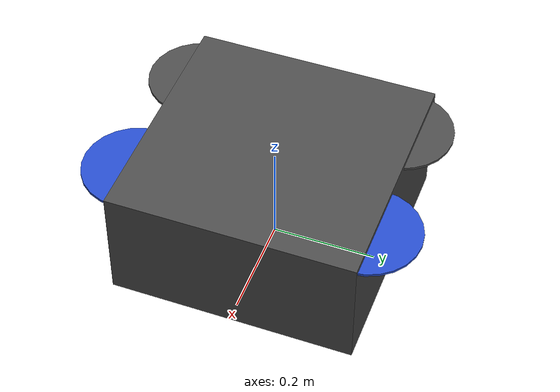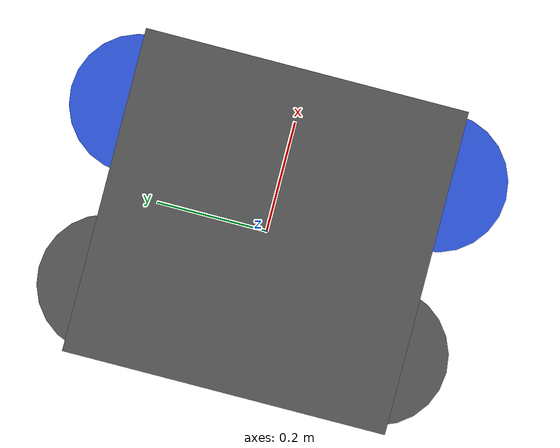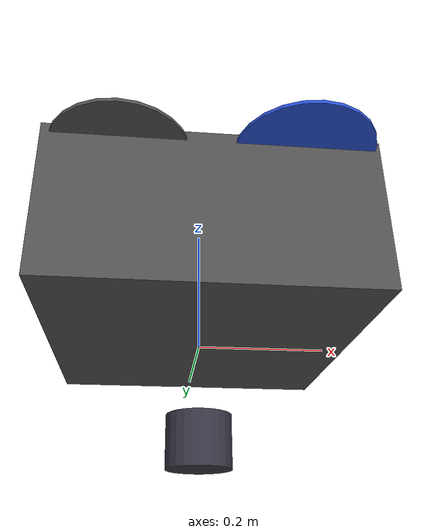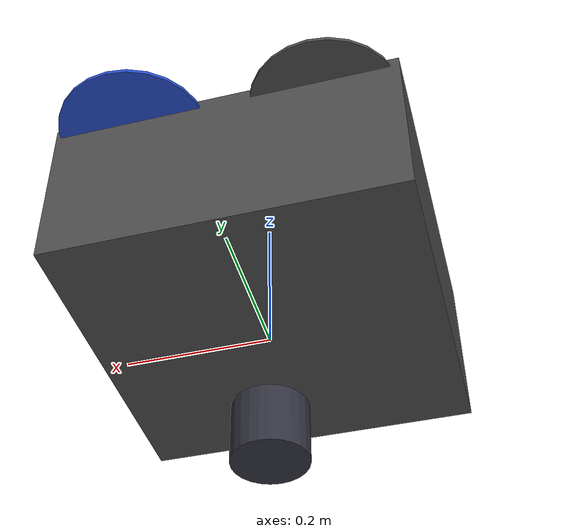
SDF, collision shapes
<?xml version="1.0"?>
<sdf version="1.10">
  <model name="iris_with_3d_lidar">
    <!-- Include base iris model with standoffs -->
    <include>
      <uri>model://iris_with_standoffs</uri>
    </include>

    <!-- LiDAR link - mounted on bottom of drone, facing downward -->
    <link name="lidar_link">
      <pose>0 0 -0.15 0 0 0</pose>
      <inertial>
        <pose>0 0 0 0 0 0</pose>
        <mass>0.1</mass>
        <inertia>
          <ixx>0.0001</ixx>
          <ixy>0</ixy>
          <ixz>0</ixz>
          <iyy>0.0001</iyy>
          <iyz>0</iyz>
          <izz>0.0001</izz>
        </inertia>
      </inertial>
      <collision name="lidar_collision">
        <pose>0 0 0 0 0 0</pose>
        <geometry>
          <cylinder>
            <radius>0.05</radius>
            <length>0.08</length>
          </cylinder>
        </geometry>
      </collision>
      <visual name="lidar_visual">
        <pose>0 0 0 0 0 0</pose>
        <geometry>
          <cylinder>
            <radius>0.05</radius>
            <length>0.08</length>
          </cylinder>
        </geometry>
        <material>
          <ambient>0.2 0.2 0.25 1</ambient>
          <diffuse>0.2 0.2 0.25 1</diffuse>
          <specular>0.5 0.5 0.5 1</specular>
        </material>
      </visual>
      <!-- 3D LiDAR sensor (Hesai PandarXT-32 style) pointing downward -->
      <sensor name="lidar_sensor" type="gpu_lidar">
        <pose>0 0 0 1.5707963 0 0</pose>
        <always_on>1</always_on>
        <update_rate>10</update_rate>
        <visualize>true</visualize>
        <topic>lidar/points</topic>
        <ray>
          <scan>
            <horizontal>
              <samples>2000</samples>
              <resolution>1</resolution>
              <min_angle>-3.14159</min_angle>
              <max_angle>3.14159</max_angle>
            </horizontal>
            <vertical>
              <samples>32</samples>
              <resolution>1</resolution>
              <min_angle>-0.279253</min_angle>
              <max_angle>0.261799</max_angle>
            </vertical>
          </scan>
          <range>
            <min>0.05</min>
            <max>120.0</max>
            <resolution>0.01</resolution>
          </range>
          <noise>
            <type>gaussian</type>
            <mean>0.0</mean>
            <stddev>0.01</stddev>
          </noise>
        </ray>
      </sensor>
    </link>

    <!-- Joint to attach LiDAR to base_link -->
    <joint name="lidar_joint" type="fixed">
      <parent>iris_with_standoffs::base_link</parent>
      <child>lidar_link</child>
      <pose>0 0 -0.15 0 0 0</pose>
      <axis>
        <xyz>0 0 1</xyz>
      </axis>
    </joint>
  </model>
</sdf>

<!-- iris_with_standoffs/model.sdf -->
<sdf version='1.6'>
  <model name='iris'>
    <pose>0 0 0.194923 0 0 0</pose>
    <link name='base_link'>
      <velocity_decay>
        <linear>0.0</linear>
        <angular>0.0</angular>
      </velocity_decay>
      <inertial>
        <pose>0 0 0 0 0 0</pose>
        <mass>1.5</mass>
        <inertia>
          <ixx>0.008</ixx>
          <ixy>0</ixy>
          <ixz>0</ixz>
          <iyy>0.015</iyy>
          <iyz>0</iyz>
          <izz>0.017</izz>
        </inertia>
      </inertial>
      <collision name='base_link_collision'>
        <pose>0 0 -0.08 0 0 0</pose>
        <geometry>
          <box>
            <size>0.47 0.47 0.23</size>
          </box>
        </geometry>
        <surface>
          <contact>
            <ode>
              <max_vel>100.0</max_vel>
              <min_depth>0.001</min_depth>
            </ode>
          </contact>
          <friction>
            <ode>
              <mu>1.0</mu>
              <mu2>1.0</mu2>
            </ode>
          </friction>
        </surface>
      </collision>
      <visual name='base_link_visual'>
        <geometry>
          <mesh>
            <uri>model://../model_source/models/iris_with_standoffs/meshes/iris.dae</uri>
          </mesh>
        </geometry>
        <material>
          <script>
            <name>Gazebo/DarkGrey</name>
          </script>
        </material>
      </visual>

      <visual name='front_left_leg_visual'>
        <pose>0.123 0.22 -0.11 0 0 0</pose>
        <geometry>
          <cylinder>
            <radius>0.005</radius>
            <length>0.17</length>
          </cylinder>
        </geometry>
        <material>
          <script>
            <name>Gazebo/FlatBlack</name>
            <uri>file://media/materials/scripts/gazebo.material</uri>
          </script>
        </material>
      </visual>
      <visual name='front_right_leg_visual'>
        <pose>0.123 -0.22 -0.11 0 0 0</pose>
        <geometry>
          <cylinder>
            <radius>0.005</radius>
            <length>0.17</length>
          </cylinder>
        </geometry>
        <material>
          <script>
            <name>Gazebo/FlatBlack</name>
            <uri>file://media/materials/scripts/gazebo.material</uri>
          </script>
        </material>
      </visual>
      <visual name='rear_left_leg_visual'>
        <pose>-0.140 0.21 -0.11 0 0 0</pose>
        <geometry>
          <cylinder>
            <radius>0.005</radius>
            <length>0.17</length>
          </cylinder>
        </geometry>
        <material>
          <script>
            <name>Gazebo/FlatBlack</name>
            <uri>file://media/materials/scripts/gazebo.material</uri>
          </script>
        </material>
      </visual>
      <visual name='rear_right_leg_visual'>
        <pose>-0.140 -0.21 -0.11 0 0 0</pose>
        <geometry>
          <cylinder>
            <radius>0.005</radius>
            <length>0.17</length>
          </cylinder>
        </geometry>
        <material>
          <script>
            <name>Gazebo/FlatBlack</name>
            <uri>file://media/materials/scripts/gazebo.material</uri>
          </script>
        </material>
      </visual>
    </link>
    <link name='iris/ground_truth/odometry_sensorgt_link'>
      <pose>0 0 0 0 -0 0</pose>
      <inertial>
        <pose>0 0 0 0 -0 0</pose>
        <mass>0.15</mass>
        <inertia>
          <ixx>0.0001</ixx>
          <ixy>0</ixy>
          <ixz>0</ixz>
          <iyy>0.0002</iyy>
          <iyz>0</iyz>
          <izz>0.0002</izz>
        </inertia>
      </inertial>
    </link>
    <joint name='iris/ground_truth/odometry_sensorgt_joint' type='revolute'>
      <child>iris/ground_truth/odometry_sensorgt_link</child>
      <parent>base_link</parent>
      <axis>
        <xyz>0 0 1</xyz>
        <limit>
          <lower>0</lower>
          <upper>0</upper>
          <effort>0</effort>
          <velocity>0</velocity>
        </limit>
        <dynamics>
          <damping>1.0</damping>
        </dynamics>
        <use_parent_model_frame>1</use_parent_model_frame>
      </axis>
      <physics>
        <ode>
          <implicit_spring_damper>1</implicit_spring_damper>
        </ode>
      </physics>
    </joint>
    <link name='iris/imu_link'>
      <inertial>
        <pose>0 0 0 0 0 0</pose>
        <mass>0.15</mass>
        <inertia>
          <ixx>0.00001</ixx>
          <ixy>0</ixy>
          <ixz>0</ixz>
          <iyy>0.00002</iyy>
          <iyz>0</iyz>
          <izz>0.00002</izz>
        </inertia>
      </inertial>
      <sensor name="imu_sensor" type="imu">
        <pose>0 0 0 3.141593 0 0</pose>
        <always_on>1</always_on>
        <update_rate>1000.0</update_rate>
      </sensor>
    </link>
    <joint name='iris/imu_joint' type='revolute'>
      <child>iris/imu_link</child>
      <parent>base_link</parent>
      <axis>
        <xyz>0 0 1</xyz>
        <limit>
          <lower>0</lower>
          <upper>0</upper>
          <effort>0</effort>
          <velocity>0</velocity>
        </limit>
        <dynamics>
          <damping>1.0</damping>
        </dynamics>
        <use_parent_model_frame>1</use_parent_model_frame>
      </axis>
      <physics>
        <ode>
          <implicit_spring_damper>1</implicit_spring_damper>
        </ode>
      </physics>
    </joint>
    <link name='rotor_0'>
      <pose>0.13 -0.22 0.023 0 -0 0</pose>
      <inertial>
        <pose>0 0 0 0 -0 0</pose>
        <mass>0.025</mass>
        <inertia>
          <ixx>9.75e-06</ixx>
          <ixy>0</ixy>
          <ixz>0</ixz>
          <iyy>0.000166704</iyy>
          <iyz>0</iyz>
          <izz>0.000167604</izz>
        </inertia>
      </inertial>
      <collision name='rotor_0_collision'>
        <pose>0 0 0 0 -0 0</pose>
        <geometry>
          <cylinder>
            <length>0.005</length>
            <radius>0.1</radius>
          </cylinder>
        </geometry>
        <surface>
          <contact>
            <ode/>
          </contact>
          <friction>
            <ode/>
          </friction>
        </surface>
      </collision>
      <visual name='rotor_0_visual'>
        <pose>0 0 0 0 -0 0</pose>
        <geometry>
          <mesh>
            <scale>1 1 1</scale>
            <uri>model://../model_source/models/iris_with_standoffs/meshes/iris_prop_ccw.dae</uri>
          </mesh>
        </geometry>
        <material>
          <script>
            <name>Gazebo/Blue</name>
            <uri>__default__</uri>
          </script>
        </material>
      </visual>
      <gravity>1</gravity>
      <velocity_decay/>
      <self_collide>0</self_collide>
    </link>
    <joint name='rotor_0_joint' type='revolute'>
      <child>rotor_0</child>
      <parent>base_link</parent>
      <axis>
        <xyz>0 0 1</xyz>
        <limit>
          <lower>-1e+16</lower>
          <upper>1e+16</upper>
        </limit>
        <dynamics>
          <damping>0.004</damping>
        </dynamics>
        <use_parent_model_frame>1</use_parent_model_frame>
      </axis>
      <physics>
        <ode>
          <implicit_spring_damper>1</implicit_spring_damper>
        </ode>
      </physics>
    </joint>
    <link name='rotor_1'>
      <pose>-0.13 0.2 0.023 0 -0 0</pose>
      <inertial>
        <pose>0 0 0 0 -0 0</pose>
        <mass>0.025</mass>
        <inertia>
          <ixx>9.75e-06</ixx>
          <ixy>0</ixy>
          <ixz>0</ixz>
          <iyy>0.000166704</iyy>
          <iyz>0</iyz>
          <izz>0.000167604</izz>
        </inertia>
      </inertial>
      <collision name='rotor_1_collision'>
        <pose>0 0 0 0 -0 0</pose>
        <geometry>
          <cylinder>
            <length>0.005</length>
            <radius>0.1</radius>
          </cylinder>
        </geometry>
        <surface>
          <contact>
            <ode/>
          </contact>
          <friction>
            <ode/>
          </friction>
        </surface>
      </collision>
      <visual name='rotor_1_visual'>
        <pose>0 0 0 0 -0 0</pose>
        <geometry>
          <mesh>
            <scale>1 1 1</scale>
            <uri>model://../model_source/models/iris_with_standoffs/meshes/iris_prop_ccw.dae</uri>
          </mesh>
        </geometry>
        <material>
          <script>
            <name>Gazebo/DarkGrey</name>
            <uri>__default__</uri>
          </script>
        </material>
      </visual>
      <gravity>1</gravity>
      <velocity_decay/>
      <self_collide>0</self_collide>
    </link>
    <joint name='rotor_1_joint' type='revolute'>
      <child>rotor_1</child>
      <parent>base_link</parent>
      <axis>
        <xyz>0 0 1</xyz>
        <limit>
          <lower>-1e+16</lower>
          <upper>1e+16</upper>
        </limit>
        <dynamics>
          <damping>0.004</damping>
        </dynamics>
        <use_parent_model_frame>1</use_parent_model_frame>
      </axis>
      <physics>
        <ode>
          <implicit_spring_damper>1</implicit_spring_damper>
        </ode>
      </physics>
    </joint>
    <link name='rotor_2'>
      <pose>0.13 0.22 0.023 0 -0 0</pose>
      <inertial>
        <pose>0 0 0 0 -0 0</pose>
        <mass>0.025</mass>
        <inertia>
          <ixx>9.75e-06</ixx>
          <ixy>0</ixy>
          <ixz>0</ixz>
          <iyy>0.000166704</iyy>
          <iyz>0</iyz>
          <izz>0.000167604</izz>
        </inertia>
      </inertial>
      <collision name='rotor_2_collision'>
        <pose>0 0 0 0 -0 0</pose>
        <geometry>
          <cylinder>
            <length>0.005</length>
            <radius>0.1</radius>
          </cylinder>
        </geometry>
        <surface>
          <contact>
            <ode/>
          </contact>
          <friction>
            <ode/>
          </friction>
        </surface>
      </collision>
      <visual name='rotor_2_visual'>
        <pose>0 0 0 0 -0 0</pose>
        <geometry>
          <mesh>
            <scale>1 1 1</scale>
            <uri>model://../model_source/models/iris_with_standoffs/meshes/iris_prop_cw.dae</uri>
          </mesh>
        </geometry>
        <material>
          <script>
            <name>Gazebo/Blue</name>
            <uri>__default__</uri>
          </script>
        </material>
      </visual>
      <gravity>1</gravity>
      <velocity_decay/>
      <self_collide>0</self_collide>
    </link>
    <joint name='rotor_2_joint' type='revolute'>
      <child>rotor_2</child>
      <parent>base_link</parent>
      <axis>
        <xyz>0 0 1</xyz>
        <limit>
          <lower>-1e+16</lower>
          <upper>1e+16</upper>
        </limit>
        <dynamics>
          <damping>0.004</damping>
        </dynamics>
        <use_parent_model_frame>1</use_parent_model_frame>
      </axis>
      <physics>
        <ode>
          <implicit_spring_damper>1</implicit_spring_damper>
        </ode>
      </physics>
    </joint>
    <link name='rotor_3'>
      <pose>-0.13 -0.2 0.023 0 -0 0</pose>
      <inertial>
        <pose>0 0 0 0 -0 0</pose>
        <mass>0.025</mass>
        <inertia>
          <ixx>9.75e-06</ixx>
          <ixy>0</ixy>
          <ixz>0</ixz>
          <iyy>0.000166704</iyy>
          <iyz>0</iyz>
          <izz>0.000167604</izz>
        </inertia>
      </inertial>
      <collision name='rotor_3_collision'>
        <pose>0 0 0 0 -0 0</pose>
        <geometry>
          <cylinder>
            <length>0.005</length>
            <radius>0.1</radius>
          </cylinder>
        </geometry>
        <surface>
          <contact>
            <ode/>
          </contact>
          <friction>
            <ode/>
          </friction>
        </surface>
      </collision>
      <visual name='rotor_3_visual'>
        <pose>0 0 0 0 -0 0</pose>
        <geometry>
          <mesh>
            <scale>1 1 1</scale>
            <uri>model://../model_source/models/iris_with_standoffs/meshes/iris_prop_cw.dae</uri>
          </mesh>
        </geometry>
        <material>
          <script>
            <name>Gazebo/DarkGrey</name>
            <uri>__default__</uri>
          </script>
        </material>
      </visual>
      <gravity>1</gravity>
      <velocity_decay/>
      <self_collide>0</self_collide>
    </link>
    <joint name='rotor_3_joint' type='revolute'>
      <child>rotor_3</child>
      <parent>base_link</parent>
      <axis>
        <xyz>0 0 1</xyz>
        <limit>
          <lower>-1e+16</lower>
          <upper>1e+16</upper>
        </limit>
        <dynamics>
          <damping>0.004</damping>
        </dynamics>
        <use_parent_model_frame>1</use_parent_model_frame>
      </axis>
      <physics>
        <ode>
          <implicit_spring_damper>1</implicit_spring_damper>
        </ode>
      </physics>
    </joint>
    <static>0</static>
  </model>
</sdf>
